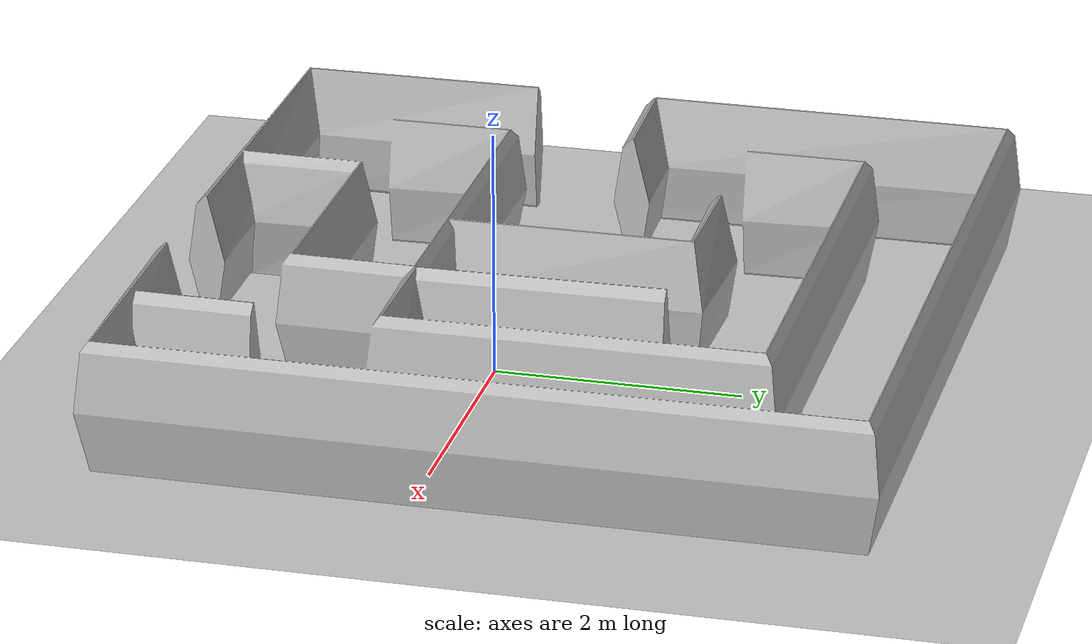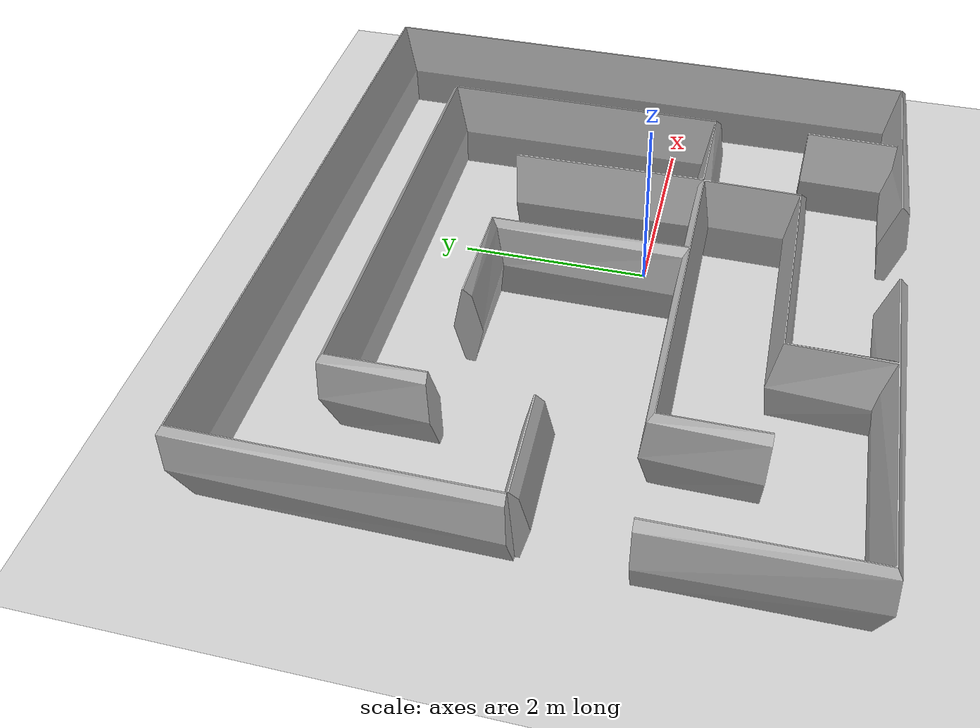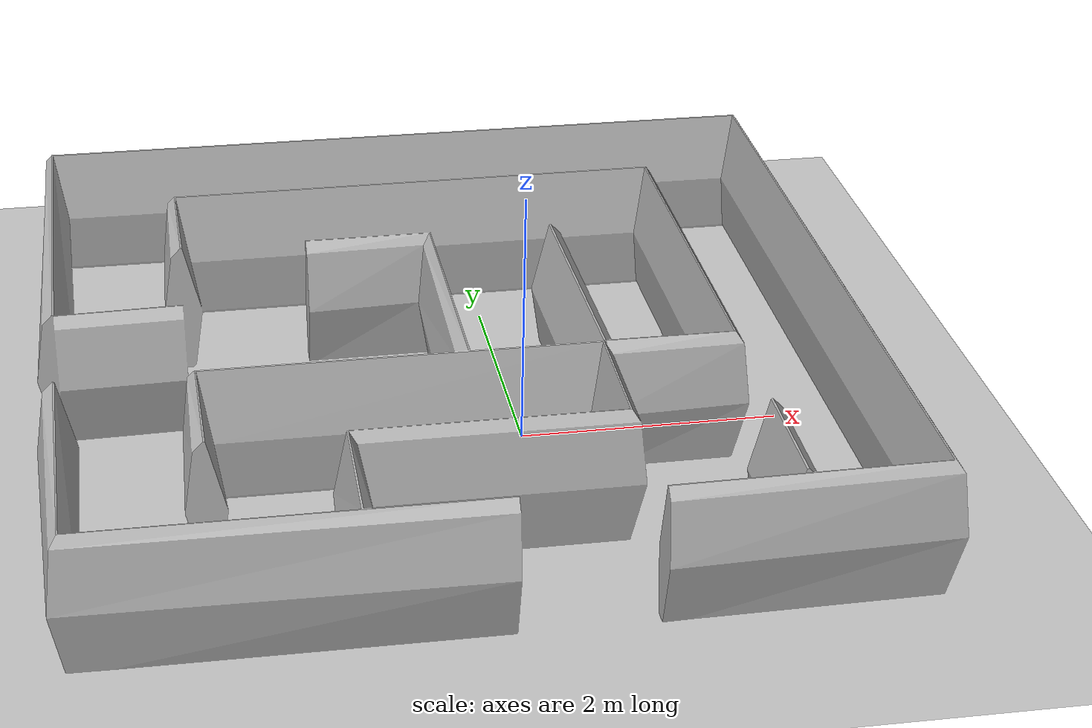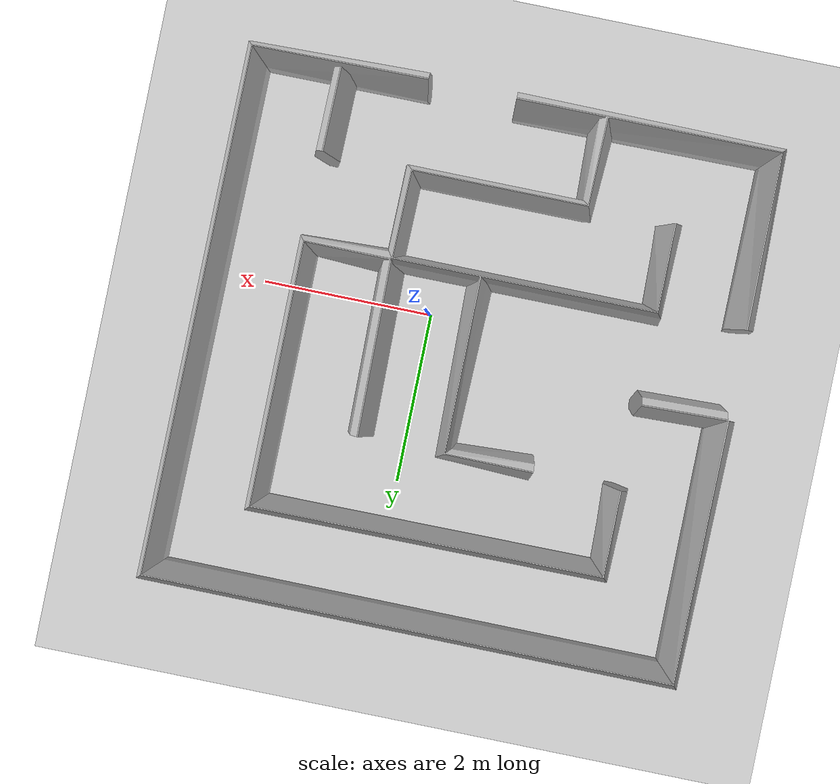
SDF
<?xml version="1.0" encoding="UTF-8" ?>
<sdf version="1.4">
  <world name="default">

    <scene>
      <ambient>0.4 0.4 0.4 1</ambient>
      <background>0.7 0.7 0.7 1</background>
      <shadows>true</shadows>
    </scene>

    <!-- A global light source -->
    <include>
      <uri>model://sun</uri>
    </include>

    <!-- A ground plane -->
    <include>
      <uri>model://ground_plane</uri>
    </include>

    <physics type="ode">
      <real_time_update_rate>1000.0</real_time_update_rate>
      <max_step_size>0.001</max_step_size>
      <real_time_factor>1</real_time_factor>
      <ode>
        <solver>
          <type>quick</type>
          <iters>150</iters>
          <precon_iters>0</precon_iters>
          <sor>1.400000</sor>
          <use_dynamic_moi_rescaling>1</use_dynamic_moi_rescaling>
        </solver>
        <constraints>
          <cfm>0.00001</cfm>
          <erp>0.2</erp>
          <contact_max_correcting_vel>2000.000000</contact_max_correcting_vel>
          <contact_surface_layer>0.01000</contact_surface_layer>
        </constraints>
      </ode>
    </physics>

    <!-- Add model maze 1-->

    <model name="my_maze1">
      <static>true</static>
      <link name="maze1_link">
        <pose>-0.5 0.5 -0.05 0 0 0</pose>
          <collision name="maze_collision">
           <geometry>
              <mesh>
                <uri>model://my_maze/meshes/maze.dae</uri>
            </mesh>
          </geometry>
        </collision>

        <visual name="maze_mesh">
          <cast_shadows>true</cast_shadows>
          <geometry>
              <mesh>
                  <uri>model://my_maze/meshes/maze.dae</uri>
              </mesh>
          </geometry>
        </visual>
      </link>
    </model>

  </world>
</sdf>
